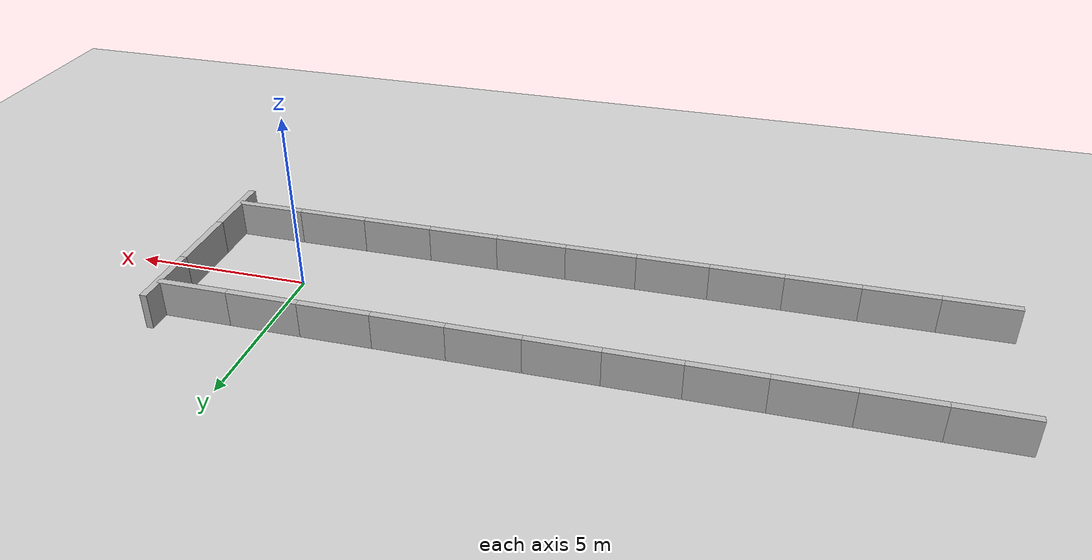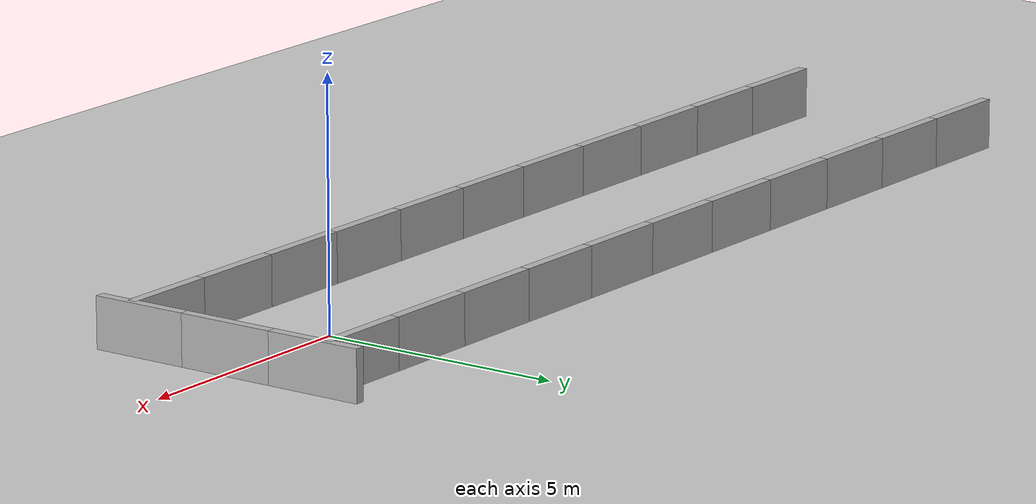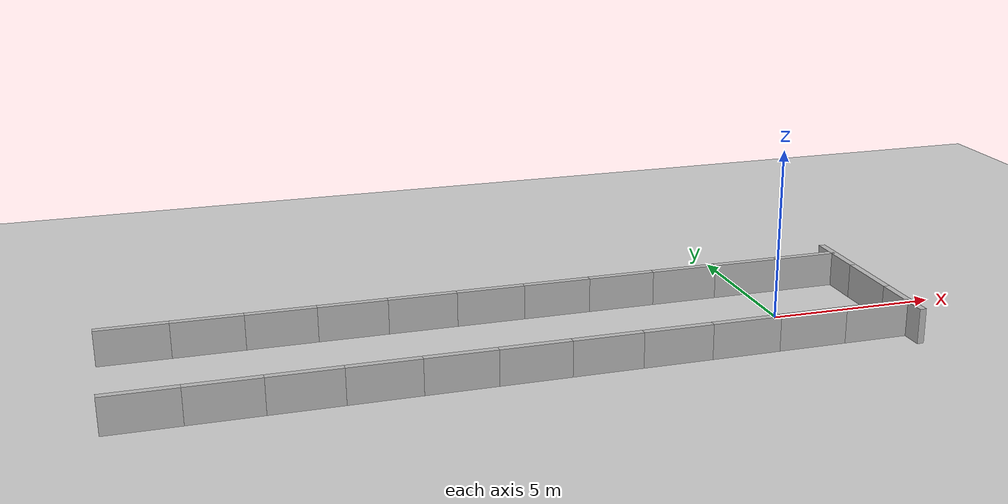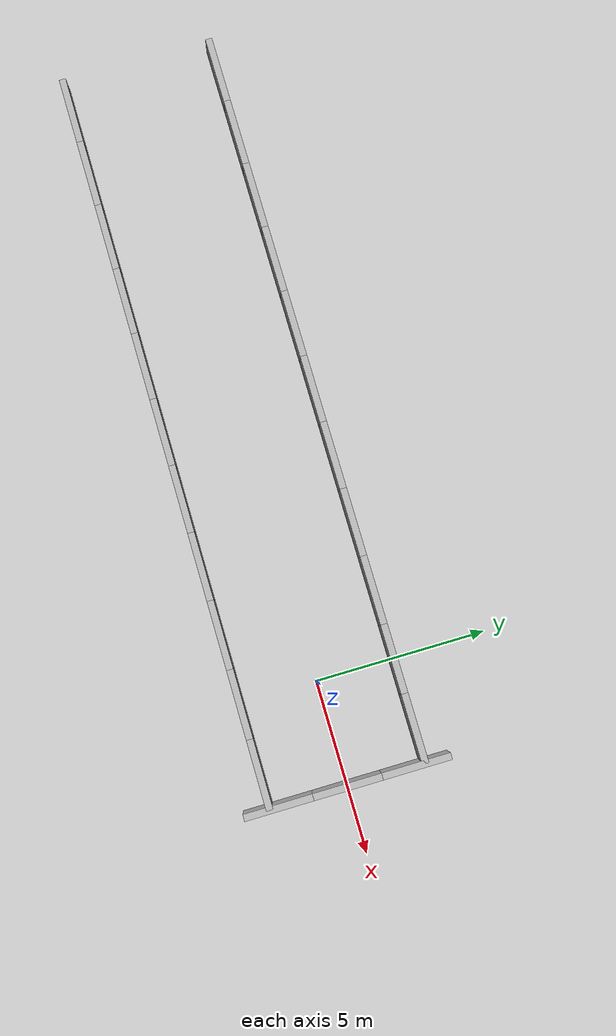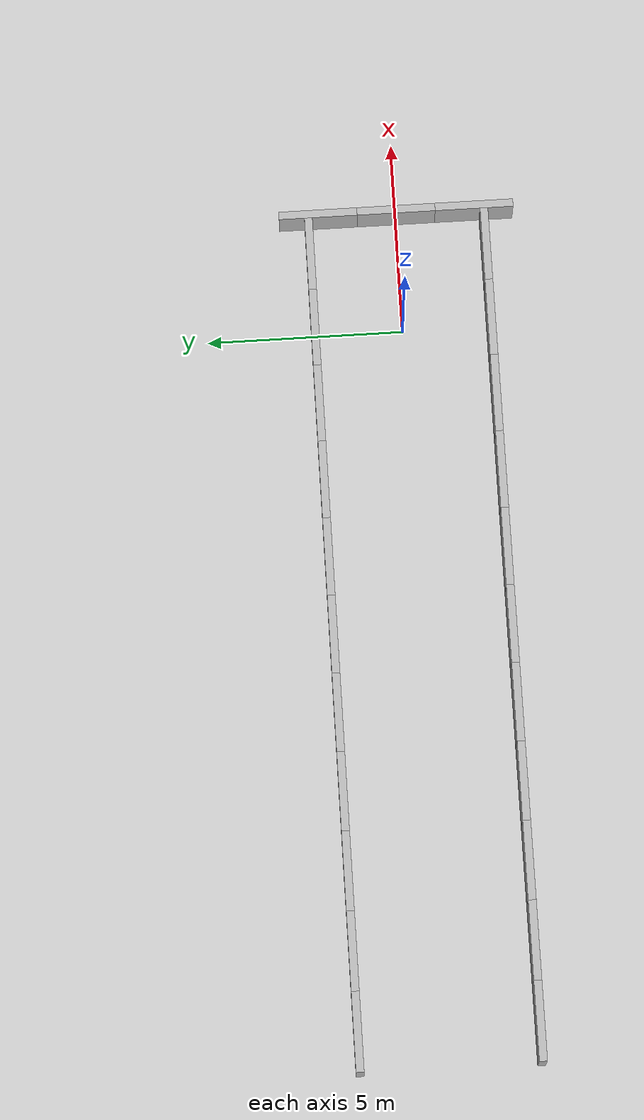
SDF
<sdf version="1.6">
 <world name="default">
  <model name="ground_plane">
   <static>1</static>
   <link name="link">
    <collision name="collision">
     <geometry><plane><normal>0 0 1</normal><size>100 100</size></plane></geometry>
     <surface>
      <contact><collide_bitmask>65535</collide_bitmask></contact>
      <friction><ode><mu>100</mu><mu2>50</mu2></ode></friction>
     </surface>
    </collision>
    <visual name="visual">
     <cast_shadows>0</cast_shadows>
     <geometry><plane><normal>0 0 1</normal><size>100 100</size></plane></geometry>
     <material>
      <script><uri>file://media/materials/scripts/gazebo.material</uri><name>Gazebo/Grey</name></script>
     </material>
    </visual>
   </link>
  </model>
  <model name="Color Tutorial Model">
   <static>1</static>
   <link name="grating">
    <collision name="body_collision"><geometry><box><size>2 0.2 2</size></box></geometry></collision>
    <visual name="body_visual">
     <geometry><box><size>2 0.2 2</size></box></geometry>
     <material>
      <script>
       <uri>/home/neuro/.gazebo/models/grating_wall/materials/scripts/</uri>
       <uri>/home/neuro/.gazebo/models/grating_wall/materials/scripts/</uri>
       <name>RepeatedTexture</name>
      </script>
     </material>
    </visual>
   </link>
   <pose>0 2.25 0 0 -0 0</pose>
  </model>
  <model name="Color Tutorial Model_clone">
   <static>1</static>
   <link name="grating">
    <collision name="body_collision"><geometry><box><size>2 0.2 2</size></box></geometry></collision>
    <visual name="body_visual">
     <geometry><box><size>2 0.2 2</size></box></geometry>
     <material>
      <script>
       <uri>/home/neuro/.gazebo/models/grating_wall/materials/scripts/</uri>
       <uri>/home/neuro/.gazebo/models/grating_wall/materials/scripts/</uri>
       <name>RepeatedTexture</name>
      </script>
     </material>
    </visual>
   </link>
   <pose>-2 2.25 0 0 -0 0</pose>
  </model>
  <model name="Color Tutorial Model_clone_0">
   <static>1</static>
   <link name="grating">
    <collision name="body_collision"><geometry><box><size>2 0.2 2</size></box></geometry></collision>
    <visual name="body_visual">
     <geometry><box><size>2 0.2 2</size></box></geometry>
     <material>
      <script>
       <uri>/home/neuro/.gazebo/models/grating_wall/materials/scripts/</uri>
       <uri>/home/neuro/.gazebo/models/grating_wall/materials/scripts/</uri>
       <name>RepeatedTexture</name>
      </script>
     </material>
    </visual>
   </link>
   <pose>2 2.25 0 0 -0 0</pose>
  </model>
  <model name="Color Tutorial Model_clone_1">
   <static>1</static>
   <link name="grating">
    <collision name="body_collision"><geometry><box><size>2 0.2 2</size></box></geometry></collision>
    <visual name="body_visual">
     <geometry><box><size>2 0.2 2</size></box></geometry>
     <material>
      <script>
       <uri>/home/neuro/.gazebo/models/grating_wall/materials/scripts/</uri>
       <uri>/home/neuro/.gazebo/models/grating_wall/materials/scripts/</uri>
       <name>RepeatedTexture</name>
      </script>
     </material>
    </visual>
   </link>
   <pose>0 -2.25 0 0 -0 0</pose>
  </model>
  <model name="Color Tutorial Model_clone_2">
   <static>1</static>
   <link name="grating">
    <collision name="body_collision"><geometry><box><size>2 0.2 2</size></box></geometry></collision>
    <visual name="body_visual">
     <geometry><box><size>2 0.2 2</size></box></geometry>
     <material>
      <script>
       <uri>/home/neuro/.gazebo/models/grating_wall/materials/scripts/</uri>
       <uri>/home/neuro/.gazebo/models/grating_wall/materials/scripts/</uri>
       <name>RepeatedTexture</name>
      </script>
     </material>
    </visual>
   </link>
   <pose>-2 -2.25 0 0 -0 0</pose>
  </model>
  <model name="Color Tutorial Model_clone_3">
   <static>1</static>
   <link name="grating">
    <collision name="body_collision"><geometry><box><size>2 0.2 2</size></box></geometry></collision>
    <visual name="body_visual">
     <geometry><box><size>2 0.2 2</size></box></geometry>
     <material>
      <script>
       <uri>/home/neuro/.gazebo/models/grating_wall/materials/scripts/</uri>
       <uri>/home/neuro/.gazebo/models/grating_wall/materials/scripts/</uri>
       <name>RepeatedTexture</name>
      </script>
     </material>
    </visual>
   </link>
   <pose>2 -2.25 0 0 -0 0</pose>
  </model>
  <model name="Color Tutorial Model_clone_4_clone">
   <static>1</static>
   <link name="grating">
    <collision name="body_collision"><geometry><box><size>2 0.2 2</size></box></geometry></collision>
    <visual name="body_visual">
     <geometry><box><size>2 0.2 2</size></box></geometry>
     <material>
      <script>
       <uri>/home/neuro/.gazebo/models/grating_wall/materials/scripts/</uri>
       <uri>/home/neuro/.gazebo/models/grating_wall/materials/scripts/</uri>
       <name>RepeatedTexture</name>
      </script>
     </material>
    </visual>
   </link>
   <pose>-4 2.25 0 0 0 -3.14159</pose>
  </model>
  <model name="Color Tutorial Model_clone_4_clone_clone">
   <static>1</static>
   <link name="grating">
    <collision name="body_collision"><geometry><box><size>2 0.2 2</size></box></geometry></collision>
    <visual name="body_visual">
     <geometry><box><size>2 0.2 2</size></box></geometry>
     <material>
      <script>
       <uri>/home/neuro/.gazebo/models/grating_wall/materials/scripts/</uri>
       <uri>/home/neuro/.gazebo/models/grating_wall/materials/scripts/</uri>
       <name>RepeatedTexture</name>
      </script>
     </material>
    </visual>
   </link>
   <pose>3 -2 0 0 -0 1.5708</pose>
  </model>
  <model name="Color Tutorial Model_clone_4_clone_clone_0">
   <static>1</static>
   <link name="grating">
    <collision name="body_collision"><geometry><box><size>2 0.2 2</size></box></geometry></collision>
    <visual name="body_visual">
     <geometry><box><size>2 0.2 2</size></box></geometry>
     <material>
      <script>
       <uri>/home/neuro/.gazebo/models/grating_wall/materials/scripts/</uri>
       <uri>/home/neuro/.gazebo/models/grating_wall/materials/scripts/</uri>
       <name>RepeatedTexture</name>
      </script>
     </material>
    </visual>
   </link>
   <pose>3 0 0 0 -0 1.5708</pose>
  </model>
  <model name="Color Tutorial Model_clone_4_clone_clone_1">
   <static>1</static>
   <link name="grating">
    <collision name="body_collision"><geometry><box><size>2 0.2 2</size></box></geometry></collision>
    <visual name="body_visual">
     <geometry><box><size>2 0.2 2</size></box></geometry>
     <material>
      <script>
       <uri>/home/neuro/.gazebo/models/grating_wall/materials/scripts/</uri>
       <uri>/home/neuro/.gazebo/models/grating_wall/materials/scripts/</uri>
       <name>RepeatedTexture</name>
      </script>
     </material>
    </visual>
   </link>
   <pose>3 2 0 0 -0 1.5708</pose>
  </model>
  <model name="Color Tutorial Model_clone_4_clone_clone_2">
   <static>1</static>
   <link name="grating">
    <collision name="body_collision"><geometry><box><size>2 0.2 2</size></box></geometry></collision>
    <visual name="body_visual">
     <geometry><box><size>2 0.2 2</size></box></geometry>
     <material>
      <script>
       <uri>/home/neuro/.gazebo/models/grating_wall/materials/scripts/</uri>
       <uri>/home/neuro/.gazebo/models/grating_wall/materials/scripts/</uri>
       <name>RepeatedTexture</name>
      </script>
     </material>
    </visual>
   </link>
   <pose>-4 -2.25 0 0 0 -3.14159</pose>
  </model>
  <model name="Color Tutorial Model_clone_4_clone_clone_3">
   <static>1</static>
   <link name="grating">
    <collision name="body_collision"><geometry><box><size>2 0.2 2</size></box></geometry></collision>
    <visual name="body_visual">
     <geometry><box><size>2 0.2 2</size></box></geometry>
     <material>
      <script>
       <uri>/home/neuro/.gazebo/models/grating_wall/materials/scripts/</uri>
       <uri>/home/neuro/.gazebo/models/grating_wall/materials/scripts/</uri>
       <name>RepeatedTexture</name>
      </script>
     </material>
    </visual>
   </link>
   <pose>-6 -2.25 0 0 0 -3.14159</pose>
  </model>
  <model name="Color Tutorial Model_clone_4_clone_clone_4">
   <static>1</static>
   <link name="grating">
    <collision name="body_collision"><geometry><box><size>2 0.2 2</size></box></geometry></collision>
    <visual name="body_visual">
     <geometry><box><size>2 0.2 2</size></box></geometry>
     <material>
      <script>
       <uri>/home/neuro/.gazebo/models/grating_wall/materials/scripts/</uri>
       <uri>/home/neuro/.gazebo/models/grating_wall/materials/scripts/</uri>
       <name>RepeatedTexture</name>
      </script>
     </material>
    </visual>
   </link>
   <pose>-6 2.25 0 0 0 -3.14159</pose>
  </model>
  <model name="Color Tutorial Model_clone_4_clone_clone_3_clone">
   <static>1</static>
   <link name="grating">
    <collision name="body_collision"><geometry><box><size>2 0.2 2</size></box></geometry></collision>
    <visual name="body_visual">
     <geometry><box><size>2 0.2 2</size></box></geometry>
     <material>
      <script>
       <uri>/home/neuro/.gazebo/models/grating_wall/materials/scripts/</uri>
       <uri>/home/neuro/.gazebo/models/grating_wall/materials/scripts/</uri>
       <name>RepeatedTexture</name>
      </script>
     </material>
    </visual>
   </link>
   <pose>-8 -2.25 0 0 0 -3.14159</pose>
  </model>
  <model name="Color Tutorial Model_clone_4_clone_clone_3_clone_0">
   <static>1</static>
   <link name="grating">
    <collision name="body_collision"><geometry><box><size>2 0.2 2</size></box></geometry></collision>
    <visual name="body_visual">
     <geometry><box><size>2 0.2 2</size></box></geometry>
     <material>
      <script>
       <uri>/home/neuro/.gazebo/models/grating_wall/materials/scripts/</uri>
       <uri>/home/neuro/.gazebo/models/grating_wall/materials/scripts/</uri>
       <name>RepeatedTexture</name>
      </script>
     </material>
    </visual>
   </link>
   <pose>-8 2.25 0 0 0 -3.14159</pose>
  </model>
  <model name="Color Tutorial Model_clone_4_clone_clone_3_clone_1">
   <static>1</static>
   <link name="grating">
    <collision name="body_collision"><geometry><box><size>2 0.2 2</size></box></geometry></collision>
    <visual name="body_visual">
     <geometry><box><size>2 0.2 2</size></box></geometry>
     <material>
      <script>
       <uri>/home/neuro/.gazebo/models/grating_wall/materials/scripts/</uri>
       <uri>/home/neuro/.gazebo/models/grating_wall/materials/scripts/</uri>
       <name>RepeatedTexture</name>
      </script>
     </material>
    </visual>
   </link>
   <pose>-10 2.25 0 0 0 -3.14159</pose>
  </model>
  <model name="Color Tutorial Model_clone_4_clone_clone_3_clone_2">
   <static>1</static>
   <link name="grating">
    <collision name="body_collision"><geometry><box><size>2 0.2 2</size></box></geometry></collision>
    <visual name="body_visual">
     <geometry><box><size>2 0.2 2</size></box></geometry>
     <material>
      <script>
       <uri>/home/neuro/.gazebo/models/grating_wall/materials/scripts/</uri>
       <uri>/home/neuro/.gazebo/models/grating_wall/materials/scripts/</uri>
       <name>RepeatedTexture</name>
      </script>
     </material>
    </visual>
   </link>
   <pose>-10 -2.25 0 0 0 -3.14159</pose>
  </model>
  <model name="Color Tutorial Model_clone_4_clone_clone_3_clone_2_clone">
   <static>1</static>
   <link name="grating">
    <collision name="body_collision"><geometry><box><size>2 0.2 2</size></box></geometry></collision>
    <visual name="body_visual">
     <geometry><box><size>2 0.2 2</size></box></geometry>
     <material>
      <script>
       <uri>/home/neuro/.gazebo/models/grating_wall/materials/scripts/</uri>
       <uri>/home/neuro/.gazebo/models/grating_wall/materials/scripts/</uri>
       <name>RepeatedTexture</name>
      </script>
     </material>
    </visual>
   </link>
   <pose>-12 -2.25 0 0 0 -3.14159</pose>
  </model>
  <model name="Color Tutorial Model_clone_4_clone_clone_3_clone_2_clone_0">
   <static>1</static>
   <link name="grating">
    <collision name="body_collision"><geometry><box><size>2 0.2 2</size></box></geometry></collision>
    <visual name="body_visual">
     <geometry><box><size>2 0.2 2</size></box></geometry>
     <material>
      <script>
       <uri>/home/neuro/.gazebo/models/grating_wall/materials/scripts/</uri>
       <uri>/home/neuro/.gazebo/models/grating_wall/materials/scripts/</uri>
       <name>RepeatedTexture</name>
      </script>
     </material>
    </visual>
   </link>
   <pose>-12 2.25 0 0 0 -3.14159</pose>
  </model>
  <model name="Color Tutorial Model_clone_4_clone_clone_3_clone_2_clone_1">
   <static>1</static>
   <link name="grating">
    <collision name="body_collision"><geometry><box><size>2 0.2 2</size></box></geometry></collision>
    <visual name="body_visual">
     <geometry><box><size>2 0.2 2</size></box></geometry>
     <material>
      <script>
       <uri>/home/neuro/.gazebo/models/grating_wall/materials/scripts/</uri>
       <uri>/home/neuro/.gazebo/models/grating_wall/materials/scripts/</uri>
       <name>RepeatedTexture</name>
      </script>
     </material>
    </visual>
   </link>
   <pose>-14 -2.25 0 0 0 -3.14159</pose>
  </model>
  <model name="Color Tutorial Model_clone_4_clone_clone_3_clone_2_clone_2">
   <static>1</static>
   <link name="grating">
    <collision name="body_collision"><geometry><box><size>2 0.2 2</size></box></geometry></collision>
    <visual name="body_visual">
     <geometry><box><size>2 0.2 2</size></box></geometry>
     <material>
      <script>
       <uri>/home/neuro/.gazebo/models/grating_wall/materials/scripts/</uri>
       <uri>/home/neuro/.gazebo/models/grating_wall/materials/scripts/</uri>
       <name>RepeatedTexture</name>
      </script>
     </material>
    </visual>
   </link>
   <pose>-14 2.25 0 0 0 -3.14159</pose>
  </model>
  <model name="Color Tutorial Model_clone_4_clone_clone_3_clone_2_clone_1_clone">
   <static>1</static>
   <link name="grating">
    <collision name="body_collision"><geometry><box><size>2 0.2 2</size></box></geometry></collision>
    <visual name="body_visual">
     <geometry><box><size>2 0.2 2</size></box></geometry>
     <material>
      <script>
       <uri>/home/neuro/.gazebo/models/grating_wall/materials/scripts/</uri>
       <uri>/home/neuro/.gazebo/models/grating_wall/materials/scripts/</uri>
       <name>RepeatedTexture</name>
      </script>
     </material>
    </visual>
   </link>
   <pose>-16 -2.25 0 0 0 -3.14159</pose>
  </model>
  <model name="Color Tutorial Model_clone_4_clone_clone_3_clone_2_clone_1_clone_0">
   <static>1</static>
   <link name="grating">
    <collision name="body_collision"><geometry><box><size>2 0.2 2</size></box></geometry></collision>
    <visual name="body_visual">
     <geometry><box><size>2 0.2 2</size></box></geometry>
     <material>
      <script>
       <uri>/home/neuro/.gazebo/models/grating_wall/materials/scripts/</uri>
       <uri>/home/neuro/.gazebo/models/grating_wall/materials/scripts/</uri>
       <name>RepeatedTexture</name>
      </script>
     </material>
    </visual>
   </link>
   <pose>-16 2.25 0 0 0 -3.14159</pose>
  </model>
  <model name="Color Tutorial Model_clone_4_clone_clone_3_clone_2_clone_1_clone_1">
   <static>1</static>
   <link name="grating">
    <collision name="body_collision"><geometry><box><size>2 0.2 2</size></box></geometry></collision>
    <visual name="body_visual">
     <geometry><box><size>2 0.2 2</size></box></geometry>
     <material>
      <script>
       <uri>/home/neuro/.gazebo/models/grating_wall/materials/scripts/</uri>
       <uri>/home/neuro/.gazebo/models/grating_wall/materials/scripts/</uri>
       <name>RepeatedTexture</name>
      </script>
     </material>
    </visual>
   </link>
   <pose>-18 -2.25 0 0 0 -3.14159</pose>
  </model>
  <model name="Color Tutorial Model_clone_4_clone_clone_3_clone_2_clone_1_clone_2">
   <static>1</static>
   <link name="grating">
    <collision name="body_collision"><geometry><box><size>2 0.2 2</size></box></geometry></collision>
    <visual name="body_visual">
     <geometry><box><size>2 0.2 2</size></box></geometry>
     <material>
      <script>
       <uri>/home/neuro/.gazebo/models/grating_wall/materials/scripts/</uri>
       <uri>/home/neuro/.gazebo/models/grating_wall/materials/scripts/</uri>
       <name>RepeatedTexture</name>
      </script>
     </material>
    </visual>
   </link>
   <pose>-18 2.25 0 0 0 -3.14159</pose>
  </model>
 </world>
</sdf>
